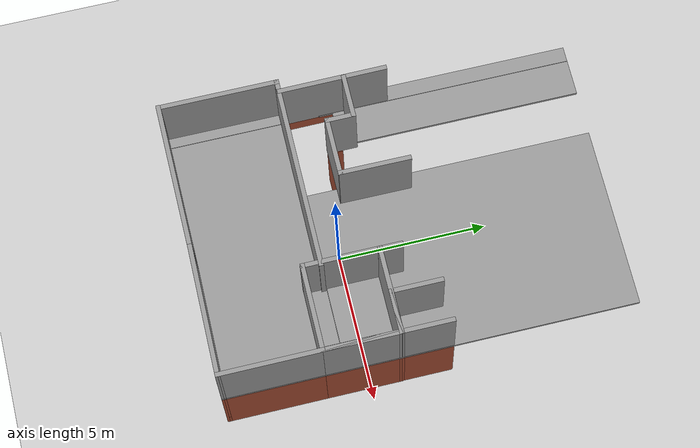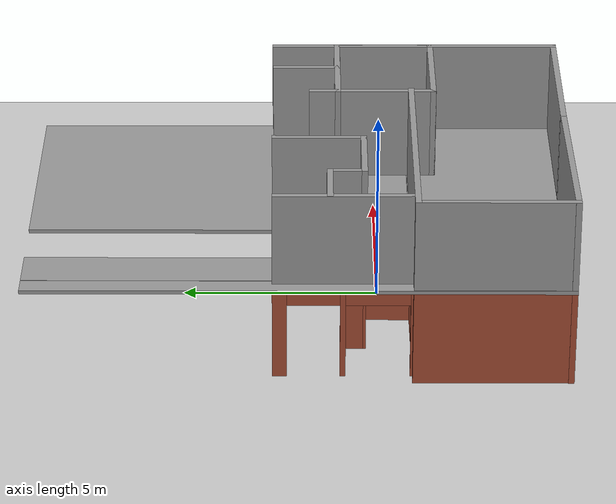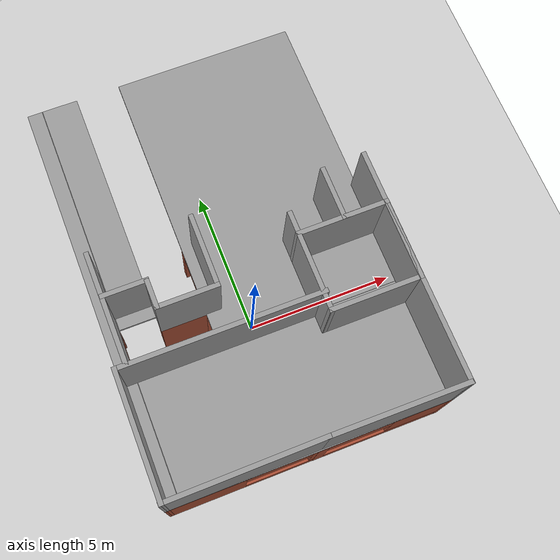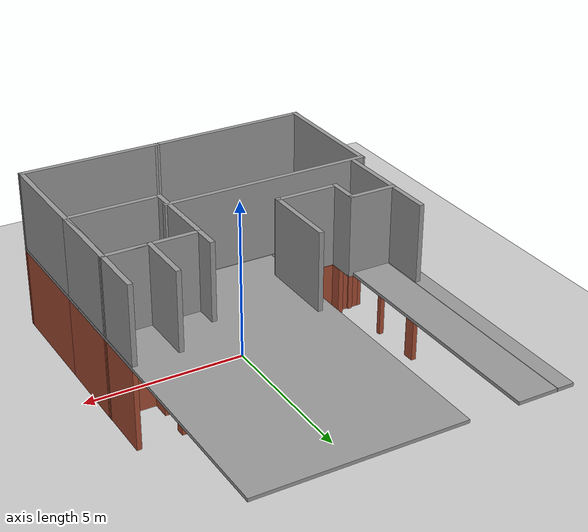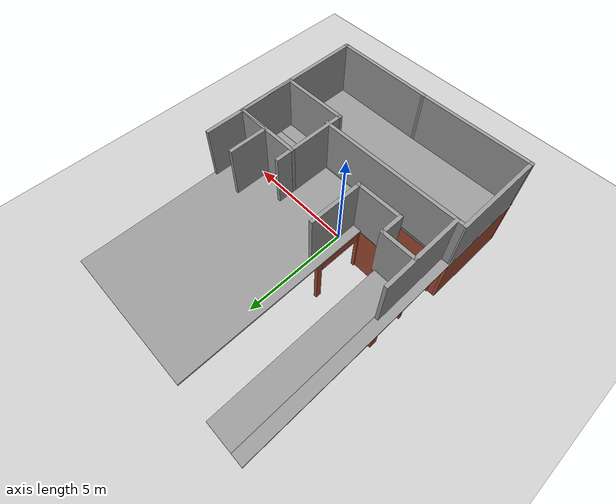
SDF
<sdf version="1.7">
 <world name="default">
  <model name="ground_plane">
   <static>1</static>
   <link name="link">
    <collision name="collision">
     <geometry><plane><normal>0 0 1</normal><size>100 100</size></plane></geometry>
     <surface><friction><ode><mu>100</mu><mu2>50</mu2></ode></friction></surface>
    </collision>
    <visual name="visual">
     <cast_shadows>0</cast_shadows>
     <geometry><plane><normal>0 0 1</normal><size>100 100</size></plane></geometry>
     <material>
      <script><uri>file://media/materials/scripts/gazebo.material</uri><name>Gazebo/Grey</name></script>
     </material>
    </visual>
   </link>
  </model>
  <model name="ZuHause">
   <pose>0.001955 2.012 0 0 -0 0</pose>
   <link name="Floor_2">
    <pose>0.000206 -0.000134 2.5 0 -0 0</pose>
    <visual name="Floor_2_Visual_0">
     <pose>-4.38196 0 0.05 0 -0 0</pose>
     <geometry><box><size>0.503546 13.6275 0.1</size></box></geometry>
     <material>
      <script><uri>file://media/materials/scripts/gazebo.material</uri><name>Gazebo/Grey</name></script>
      <ambient>1 1 1 1</ambient>
     </material>
     <meta><layer>1</layer></meta>
    </visual>
    <collision name="Floor_2_Collision_0">
     <geometry><box><size>0.503546 13.6275 0.1</size></box></geometry>
     <pose>-4.38196 0 0.05 0 -0 0</pose>
    </collision>
    <visual name="Floor_2_Visual_1">
     <pose>-4.12306 -4.79997 0.05 0 -0 0</pose>
     <geometry><box><size>0.014263 4.02759 0.1</size></box></geometry>
     <material>
      <script><uri>file://media/materials/scripts/gazebo.material</uri><name>Gazebo/Grey</name></script>
      <ambient>1 1 1 1</ambient>
     </material>
     <meta><layer>1</layer></meta>
    </visual>
    <collision name="Floor_2_Collision_1">
     <geometry><box><size>0.014263 4.02759 0.1</size></box></geometry>
     <pose>-4.12306 -4.79997 0.05 0 -0 0</pose>
    </collision>
    <visual name="Floor_2_Visual_2">
     <pose>0.258905 -4.80487 0.05 0 -0 0</pose>
     <geometry><box><size>8.74967 4.01778 0.1</size></box></geometry>
     <material>
      <script><uri>file://media/materials/scripts/gazebo.material</uri><name>Gazebo/Grey</name></script>
      <ambient>1 1 1 1</ambient>
     </material>
     <meta><layer>1</layer></meta>
    </visual>
    <collision name="Floor_2_Collision_2">
     <geometry><box><size>8.74967 4.01778 0.1</size></box></geometry>
     <pose>0.258905 -4.80487 0.05 0 -0 0</pose>
    </collision>
    <visual name="Floor_2_Visual_3">
     <pose>0.858905 -2.79108 0.05 0 -0 0</pose>
     <geometry><box><size>7.54967 0.009809 0.1</size></box></geometry>
     <material>
      <script><uri>file://media/materials/scripts/gazebo.material</uri><name>Gazebo/Grey</name></script>
      <ambient>1 1 1 1</ambient>
     </material>
     <meta><layer>1</layer></meta>
    </visual>
    <collision name="Floor_2_Collision_3">
     <geometry><box><size>7.54967 0.009809 0.1</size></box></geometry>
     <pose>0.858905 -2.79108 0.05 0 -0 0</pose>
    </collision>
    <visual name="Floor_2_Visual_4">
     <pose>1.5995 2.01379 0.05 0 -0 0</pose>
     <geometry><box><size>6.06847 9.59994 0.1</size></box></geometry>
     <material>
      <script><uri>file://media/materials/scripts/gazebo.material</uri><name>Gazebo/Grey</name></script>
      <ambient>1 1 1 1</ambient>
     </material>
     <meta><layer>1</layer></meta>
    </visual>
    <collision name="Floor_2_Collision_4">
     <geometry><box><size>6.06847 9.59994 0.1</size></box></geometry>
     <pose>1.5995 2.01379 0.05 0 -0 0</pose>
    </collision>
    <visual name="Floor_2_Visual_5">
     <pose>-4.12306 2.56379 0.05 0 -0 0</pose>
     <geometry><box><size>0.014263 8.49994 0.1</size></box></geometry>
     <material>
      <script><uri>file://media/materials/scripts/gazebo.material</uri><name>Gazebo/Grey</name></script>
      <ambient>1 1 1 1</ambient>
     </material>
     <meta><layer>1</layer></meta>
    </visual>
    <collision name="Floor_2_Collision_5">
     <geometry><box><size>0.014263 8.49994 0.1</size></box></geometry>
     <pose>-4.12306 2.56379 0.05 0 -0 0</pose>
    </collision>
    <visual name="Floor_2_Visual_6">
     <pose>-3.51593 2.79256 0.05 0 -0 0</pose>
     <geometry><box><size>1.2 8.0424 0.1</size></box></geometry>
     <material>
      <script><uri>file://media/materials/scripts/gazebo.material</uri><name>Gazebo/Grey</name></script>
      <ambient>1 1 1 1</ambient>
     </material>
     <meta><layer>1</layer></meta>
    </visual>
    <collision name="Floor_2_Collision_6">
     <geometry><box><size>1.2 8.0424 0.1</size></box></geometry>
     <pose>-3.51593 2.79256 0.05 0 -0 0</pose>
    </collision>
   </link>
   <link name="Wall_110">
    <collision name="Wall_110_Collision">
     <geometry><box><size>3.59527 0.15 2.5</size></box></geometry>
     <pose>0 0 1.25 0 -0 0</pose>
    </collision>
    <visual name="Wall_110_Visual">
     <pose>0 0 1.25 0 -0 0</pose>
     <geometry><box><size>3.59527 0.15 2.5</size></box></geometry>
     <material>
      <script><uri>file://media/materials/scripts/gazebo.material</uri><name>Gazebo/Grey</name></script>
      <ambient>1 1 1 1</ambient>
     </material>
     <meta><layer>1</layer></meta>
    </visual>
    <pose>-4.20835 -1.14672 2.5 0 -0 -1.56465</pose>
   </link>
   <link name="Wall_112">
    <collision name="Wall_112_Collision">
     <geometry><box><size>2.36905 0.15 2.5</size></box></geometry>
     <pose>0 0 1.25 0 -0 0</pose>
    </collision>
    <visual name="Wall_112_Visual">
     <pose>0 0 1.25 0 -0 0</pose>
     <geometry><box><size>2.36905 0.15 2.5</size></box></geometry>
     <material>
      <script><uri>file://media/materials/scripts/gazebo.material</uri><name>Gazebo/Grey</name></script>
      <ambient>1 1 1 1</ambient>
     </material>
     <meta><layer>1</layer></meta>
    </visual>
    <pose>-0.99461 -0.507996 2.5 0 -0 -1.57446</pose>
   </link>
   <link name="Wall_113">
    <collision name="Wall_113_Collision">
     <geometry><box><size>1 0.15 2.5</size></box></geometry>
     <pose>0 0 1.25 0 -0 0</pose>
    </collision>
    <visual name="Wall_113_Visual">
     <pose>0 0 1.25 0 -0 0</pose>
     <geometry><box><size>1 0.15 2.5</size></box></geometry>
     <material>
      <script><uri>file://media/materials/scripts/gazebo.material</uri><name>Gazebo/Grey</name></script>
      <ambient>1 1 1 1</ambient>
     </material>
     <meta><layer>1</layer></meta>
    </visual>
    <pose>-2.8489 -1.19254 2.5 0 -0 -1.5708</pose>
   </link>
   <link name="Wall_114">
    <collision name="Wall_114_Collision">
     <geometry><box><size>2 0.15 2.5</size></box></geometry>
     <pose>0 0 1.25 0 -0 0</pose>
    </collision>
    <visual name="Wall_114_Visual">
     <pose>0 0 1.25 0 -0 0</pose>
     <geometry><box><size>2 0.15 2.5</size></box></geometry>
     <material>
      <script><uri>file://media/materials/scripts/gazebo.material</uri><name>Gazebo/Grey</name></script>
      <ambient>1 1 1 1</ambient>
     </material>
     <meta><layer>1</layer></meta>
    </visual>
    <pose>-1.9239 -1.62325 2.5 0 -0 0</pose>
   </link>
   <link name="Wall_116">
    <collision name="Wall_116_Collision">
     <geometry><box><size>6.5 0.15 2.5</size></box></geometry>
     <pose>0 0 1.25 0 -0 0</pose>
    </collision>
    <visual name="Wall_116_Visual">
     <pose>0 0 1.25 0 -0 0</pose>
     <geometry><box><size>6.5 0.15 2.5</size></box></geometry>
     <material>
      <script><uri>file://media/materials/scripts/gazebo.material</uri><name>Gazebo/Grey</name></script>
      <ambient>1 1 1 1</ambient>
     </material>
     <meta><layer>1</layer></meta>
    </visual>
    <pose>-1.35316 -2.88854 2.5 0 -0 3.14159</pose>
   </link>
   <link name="Wall_117">
    <collision name="Wall_117_Collision">
     <geometry><box><size>4 0.15 2.5</size></box></geometry>
     <pose>0 0 1.25 0 -0 0</pose>
    </collision>
    <visual name="Wall_117_Visual">
     <pose>0 0 1.25 0 -0 0</pose>
     <geometry><box><size>4 0.15 2.5</size></box></geometry>
     <material>
      <script><uri>file://media/materials/scripts/gazebo.material</uri><name>Gazebo/Grey</name></script>
      <ambient>1 1 1 1</ambient>
     </material>
     <meta><layer>1</layer></meta>
    </visual>
    <pose>-4.53674 -4.81354 2.5 0 -0 -1.57158</pose>
   </link>
   <link name="Wall_118">
    <collision name="Wall_118_Collision">
     <geometry><box><size>5.00002 0.15 2.5</size></box></geometry>
     <pose>0 0 1.25 0 -0 0</pose>
    </collision>
    <visual name="Wall_118_Visual">
     <pose>0 0 1.25 0 -0 0</pose>
     <geometry><box><size>5.00002 0.15 2.5</size></box></geometry>
     <material>
      <script><uri>file://media/materials/scripts/gazebo.material</uri><name>Gazebo/Grey</name></script>
      <ambient>1 1 1 1</ambient>
     </material>
     <meta><layer>1</layer></meta>
    </visual>
    <pose>-2.12032 -6.72278 2.5 0 -0 0.006499</pose>
   </link>
   <link name="Wall_120">
    <collision name="Wall_120_Collision">
     <geometry><box><size>4.40395 0.15 2.5</size></box></geometry>
     <pose>0 0 1.25 0 -0 0</pose>
    </collision>
    <visual name="Wall_120_Visual">
     <pose>0 0 1.25 0 -0 0</pose>
     <geometry><box><size>4.40395 0.15 2.5</size></box></geometry>
     <material>
      <script><uri>file://media/materials/scripts/gazebo.material</uri><name>Gazebo/Grey</name></script>
      <ambient>1 1 1 1</ambient>
     </material>
     <meta><layer>1</layer></meta>
    </visual>
    <pose>2.43165 -6.7211 2.5 0 -0 -0.006621</pose>
   </link>
   <link name="Wall_122">
    <collision name="Wall_122_Collision">
     <geometry><box><size>3.42352 0.15 2.5</size></box></geometry>
     <pose>0 0 1.25 0 -0 0</pose>
    </collision>
    <visual name="Wall_122_Visual">
     <pose>0 0 1.25 0 -0 0</pose>
     <geometry><box><size>3.42352 0.15 2.5</size></box></geometry>
     <material>
      <script><uri>file://media/materials/scripts/gazebo.material</uri><name>Gazebo/Grey</name></script>
      <ambient>1 1 1 1</ambient>
     </material>
     <meta><layer>1</layer></meta>
    </visual>
    <pose>4.55523 -5.09843 2.5 0 -0 1.57287</pose>
   </link>
   <link name="Wall_123">
    <collision name="Wall_123_Collision">
     <geometry><box><size>2.94648 0.15 2.5</size></box></geometry>
     <pose>0 0 1.25 0 -0 0</pose>
    </collision>
    <visual name="Wall_123_Visual">
     <pose>0 0 1.25 0 -0 0</pose>
     <geometry><box><size>2.94648 0.15 2.5</size></box></geometry>
     <material>
      <script><uri>file://media/materials/scripts/gazebo.material</uri><name>Gazebo/Grey</name></script>
      <ambient>1 1 1 1</ambient>
     </material>
     <meta><layer>1</layer></meta>
    </visual>
    <pose>3.1536 -3.46176 2.5 0 -0 -3.14153</pose>
   </link>
   <link name="Wall_124">
    <collision name="Wall_124_Collision">
     <geometry><box><size>2.5 0.15 2.5</size></box></geometry>
     <pose>0 0 1.25 0 -0 0</pose>
    </collision>
    <visual name="Wall_124_Visual">
     <pose>0 0 1.25 0 -0 0</pose>
     <geometry><box><size>2.5 0.15 2.5</size></box></geometry>
     <material>
      <script><uri>file://media/materials/scripts/gazebo.material</uri><name>Gazebo/Grey</name></script>
      <ambient>1 1 1 1</ambient>
     </material>
     <meta><layer>1</layer></meta>
    </visual>
    <pose>1.75536 -2.28685 2.5 0 -0 1.5708</pose>
   </link>
   <link name="Wall_125">
    <collision name="Wall_125_Collision">
     <geometry><box><size>4.25 0.15 2.5</size></box></geometry>
     <pose>0 0 1.25 0 -0 0</pose>
    </collision>
    <visual name="Wall_125_Visual">
     <pose>0 0 1.25 0 -0 0</pose>
     <geometry><box><size>4.25 0.15 2.5</size></box></geometry>
     <material>
      <script><uri>file://media/materials/scripts/gazebo.material</uri><name>Gazebo/Grey</name></script>
      <ambient>1 1 1 1</ambient>
     </material>
     <meta><layer>1</layer></meta>
    </visual>
    <pose>4.54523 -1.41168 2.5 0 -0 1.5708</pose>
   </link>
   <link name="Wall_126">
    <collision name="Wall_126_Collision">
     <geometry><box><size>2.62506 0.15 2.5</size></box></geometry>
     <pose>0 0 1.25 0 -0 0</pose>
    </collision>
    <visual name="Wall_126_Visual">
     <pose>0 0 1.25 0 -0 0</pose>
     <geometry><box><size>2.62506 0.15 2.5</size></box></geometry>
     <material>
      <script><uri>file://media/materials/scripts/gazebo.material</uri><name>Gazebo/Grey</name></script>
      <ambient>1 1 1 1</ambient>
     </material>
     <meta><layer>1</layer></meta>
    </visual>
    <pose>4.55309 -2.22415 2.5 0 -0 1.56979</pose>
   </link>
   <link name="Wall_127">
    <collision name="Wall_127_Collision">
     <geometry><box><size>2.94945 0.15 2.5</size></box></geometry>
     <pose>0 0 1.25 0 -0 0</pose>
    </collision>
    <visual name="Wall_127_Visual">
     <pose>0 0 1.25 0 -0 0</pose>
     <geometry><box><size>2.94945 0.15 2.5</size></box></geometry>
     <material>
      <script><uri>file://media/materials/scripts/gazebo.material</uri><name>Gazebo/Grey</name></script>
      <ambient>1 1 1 1</ambient>
     </material>
     <meta><layer>1</layer></meta>
    </visual>
    <pose>3.15462 -0.994831 2.5 0 -0 -3.13844</pose>
   </link>
   <link name="Wall_128">
    <collision name="Wall_128_Collision">
     <geometry><box><size>1.5 0.15 2.5</size></box></geometry>
     <pose>0 0 1.25 0 -0 0</pose>
    </collision>
    <visual name="Wall_128_Visual">
     <pose>0 0 1.25 0 -0 0</pose>
     <geometry><box><size>1.5 0.15 2.5</size></box></geometry>
     <material>
      <script><uri>file://media/materials/scripts/gazebo.material</uri><name>Gazebo/Grey</name></script>
      <ambient>1 1 1 1</ambient>
     </material>
     <meta><layer>1</layer></meta>
    </visual>
    <pose>3.87934 -0.990423 2.5 0 -0 3.14159</pose>
   </link>
   <link name="Wall_129">
    <collision name="Wall_129_Collision">
     <geometry><box><size>1.75 0.15 2.5</size></box></geometry>
     <pose>0 0 1.25 0 -0 0</pose>
    </collision>
    <visual name="Wall_129_Visual">
     <pose>0 0 1.25 0 -0 0</pose>
     <geometry><box><size>1.75 0.15 2.5</size></box></geometry>
     <material>
      <script><uri>file://media/materials/scripts/gazebo.material</uri><name>Gazebo/Grey</name></script>
      <ambient>1 1 1 1</ambient>
     </material>
     <meta><layer>1</layer></meta>
    </visual>
    <pose>3.20433 -0.190423 2.5 0 -0 1.5708</pose>
   </link>
   <link name="Wall_130">
    <collision name="Wall_130_Collision">
     <geometry><box><size>0.814945 0.15 2.5</size></box></geometry>
     <pose>0 0 1.25 0 -0 0</pose>
    </collision>
    <visual name="Wall_130_Visual">
     <pose>0 0 1.25 0 -0 0</pose>
     <geometry><box><size>0.814945 0.15 2.5</size></box></geometry>
     <material>
      <script><uri>file://media/materials/scripts/gazebo.material</uri><name>Gazebo/Grey</name></script>
      <ambient>1 1 1 1</ambient>
     </material>
     <meta><layer>1</layer></meta>
    </visual>
    <pose>1.75865 -0.666766 2.5 0 -0 1.57258</pose>
   </link>
   <link name="Wall_140">
    <collision name="Wall_140_Collision">
     <geometry><box><size>1.5 0.15 2.5</size></box></geometry>
     <pose>0 0 1.25 0 -0 0</pose>
    </collision>
    <visual name="Wall_140_Visual">
     <pose>0 0 1.25 0 -0 0</pose>
     <geometry><box><size>1.5 0.15 2.5</size></box></geometry>
     <material>
      <script><uri>file://media/materials/scripts/gazebo.material</uri><name>Gazebo/Grey</name></script>
      <ambient>1 1 1 1</ambient>
     </material>
     <meta><layer>1</layer></meta>
    </visual>
    <pose>-3.5239 -0.767536 2.5 0 -0 3.14159</pose>
   </link>
   <link name="Wall_16">
    <pose>-1.34308 -1.1352 0 0 -0 -1.57348</pose>
    <visual name="Wall_16_Visual_0">
     <pose>-1.70399 0 1.25 0 -0 0</pose>
     <geometry><box><size>0.225416 0.15 2.5</size></box></geometry>
     <material>
      <script><uri>file://media/materials/scripts/gazebo.material</uri><name>Gazebo/Bricks</name></script>
      <ambient>1 1 1 1</ambient>
     </material>
     <meta><layer>0</layer></meta>
    </visual>
    <collision name="Wall_16_Collision_0">
     <geometry><box><size>0.225416 0.15 2.5</size></box></geometry>
     <pose>-1.70399 0 1.25 0 -0 0</pose>
    </collision>
    <visual name="Wall_16_Visual_1">
     <pose>1.07237 0 1.25 0 -0 0</pose>
     <geometry><box><size>1.48864 0.15 2.5</size></box></geometry>
     <material>
      <script><uri>file://media/materials/scripts/gazebo.material</uri><name>Gazebo/Bricks</name></script>
      <ambient>1 1 1 1</ambient>
     </material>
     <meta><layer>0</layer></meta>
    </visual>
    <collision name="Wall_16_Collision_1">
     <geometry><box><size>1.48864 0.15 2.5</size></box></geometry>
     <pose>1.07237 0 1.25 0 -0 0</pose>
    </collision>
    <visual name="Wall_16_Visual_2">
     <pose>-0.631614 0 2.25 0 -0 0</pose>
     <geometry><box><size>1.91933 0.15 0.5</size></box></geometry>
     <material>
      <script><uri>file://media/materials/scripts/gazebo.material</uri><name>Gazebo/Bricks</name></script>
      <ambient>1 1 1 1</ambient>
     </material>
     <meta><layer>0</layer></meta>
    </visual>
    <collision name="Wall_16_Collision_2">
     <geometry><box><size>1.91933 0.15 0.5</size></box></geometry>
     <pose>-0.631614 0 2.25 0 -0 0</pose>
    </collision>
   </link>
   <link name="Wall_19">
    <collision name="Wall_19_Collision">
     <geometry><box><size>0.5 0.15 2.5</size></box></geometry>
     <pose>0 0 1.25 0 -0 0</pose>
    </collision>
    <visual name="Wall_19_Visual">
     <pose>0 0 1.25 0 -0 0</pose>
     <geometry><box><size>0.5 0.15 2.5</size></box></geometry>
     <material>
      <script><uri>file://media/materials/scripts/gazebo.material</uri><name>Gazebo/Bricks</name></script>
      <ambient>1 1 1 1</ambient>
     </material>
     <meta><layer>0</layer></meta>
    </visual>
    <pose>-2.83175 -1.43111 0 0 -0 -1.5708</pose>
   </link>
   <link name="Wall_20">
    <collision name="Wall_20_Collision">
     <geometry><box><size>1.49201 0.15 2.5</size></box></geometry>
     <pose>0 0 1.25 0 -0 0</pose>
    </collision>
    <visual name="Wall_20_Visual">
     <pose>0 0 1.25 0 -0 0</pose>
     <geometry><box><size>1.49201 0.15 2.5</size></box></geometry>
     <material>
      <script><uri>file://media/materials/scripts/gazebo.material</uri><name>Gazebo/Bricks</name></script>
      <ambient>1 1 1 1</ambient>
     </material>
     <meta><layer>0</layer></meta>
    </visual>
    <pose>-2.16075 -1.60957 0 0 -0 -0.003054</pose>
   </link>
   <link name="Wall_5">
    <pose>-4.20835 -1.14672 0 0 -0 -1.56465</pose>
    <visual name="Wall_5_Visual_0">
     <pose>-1.61845 0 1.25 0 -0 0</pose>
     <geometry><box><size>0.358366 0.15 2.5</size></box></geometry>
     <material>
      <script><uri>file://media/materials/scripts/gazebo.material</uri><name>Gazebo/Bricks</name></script>
      <ambient>1 1 1 1</ambient>
     </material>
     <meta><layer>0</layer></meta>
    </visual>
    <collision name="Wall_5_Collision_0">
     <geometry><box><size>0.358366 0.15 2.5</size></box></geometry>
     <pose>-1.61845 0 1.25 0 -0 0</pose>
    </collision>
    <visual name="Wall_5_Visual_1">
     <pose>-0.056372 0 1.25 0 -0 0</pose>
     <geometry><box><size>0.138425 0.15 2.5</size></box></geometry>
     <material>
      <script><uri>file://media/materials/scripts/gazebo.material</uri><name>Gazebo/Bricks</name></script>
      <ambient>1 1 1 1</ambient>
     </material>
     <meta><layer>0</layer></meta>
    </visual>
    <collision name="Wall_5_Collision_1">
     <geometry><box><size>0.138425 0.15 2.5</size></box></geometry>
     <pose>-0.056372 0 1.25 0 -0 0</pose>
    </collision>
    <visual name="Wall_5_Visual_2">
     <pose>1.70524 0 1.25 0 -0 0</pose>
     <geometry><box><size>0.184797 0.15 2.5</size></box></geometry>
     <material>
      <script><uri>file://media/materials/scripts/gazebo.material</uri><name>Gazebo/Bricks</name></script>
      <ambient>1 1 1 1</ambient>
     </material>
     <meta><layer>0</layer></meta>
    </visual>
    <collision name="Wall_5_Collision_2">
     <geometry><box><size>0.184797 0.15 2.5</size></box></geometry>
     <pose>1.70524 0 1.25 0 -0 0</pose>
    </collision>
    <visual name="Wall_5_Visual_3">
     <pose>-0.782428 0 2.25 0 -0 0</pose>
     <geometry><box><size>1.31368 0.15 0.5</size></box></geometry>
     <material>
      <script><uri>file://media/materials/scripts/gazebo.material</uri><name>Gazebo/Bricks</name></script>
      <ambient>1 1 1 1</ambient>
     </material>
     <meta><layer>0</layer></meta>
    </visual>
    <collision name="Wall_5_Collision_3">
     <geometry><box><size>1.31368 0.15 0.5</size></box></geometry>
     <pose>-0.782428 0 2.25 0 -0 0</pose>
    </collision>
    <visual name="Wall_5_Visual_4">
     <pose>0.81284 0 2.25 0 -0 0</pose>
     <geometry><box><size>1.6 0.15 0.5</size></box></geometry>
     <material>
      <script><uri>file://media/materials/scripts/gazebo.material</uri><name>Gazebo/Bricks</name></script>
      <ambient>1 1 1 1</ambient>
     </material>
     <meta><layer>0</layer></meta>
    </visual>
    <collision name="Wall_5_Collision_4">
     <geometry><box><size>1.6 0.15 0.5</size></box></geometry>
     <pose>0.81284 0 2.25 0 -0 0</pose>
    </collision>
   </link>
   <link name="Wall_67">
    <pose>-2.10316 -2.88854 0 0 -0 3.14159</pose>
    <visual name="Wall_67_Visual_0">
     <pose>-2.18013 0 1.25 0 -0 0</pose>
     <geometry><box><size>0.639734 0.15 2.5</size></box></geometry>
     <material>
      <script><uri>file://media/materials/scripts/gazebo.material</uri><name>Gazebo/Bricks</name></script>
      <ambient>1 1 1 1</ambient>
     </material>
     <meta><layer>0</layer></meta>
    </visual>
    <collision name="Wall_67_Collision_0">
     <geometry><box><size>0.639734 0.15 2.5</size></box></geometry>
     <pose>-2.18013 0 1.25 0 -0 0</pose>
    </collision>
    <visual name="Wall_67_Visual_1">
     <pose>0.769867 0 1.25 0 -0 0</pose>
     <geometry><box><size>3.46027 0.15 2.5</size></box></geometry>
     <material>
      <script><uri>file://media/materials/scripts/gazebo.material</uri><name>Gazebo/Bricks</name></script>
      <ambient>1 1 1 1</ambient>
     </material>
     <meta><layer>0</layer></meta>
    </visual>
    <collision name="Wall_67_Collision_1">
     <geometry><box><size>3.46027 0.15 2.5</size></box></geometry>
     <pose>0.769867 0 1.25 0 -0 0</pose>
    </collision>
    <visual name="Wall_67_Visual_2">
     <pose>-1.41027 0 2.25 0 -0 0</pose>
     <geometry><box><size>0.9 0.15 0.5</size></box></geometry>
     <material>
      <script><uri>file://media/materials/scripts/gazebo.material</uri><name>Gazebo/Bricks</name></script>
      <ambient>1 1 1 1</ambient>
     </material>
     <meta><layer>0</layer></meta>
    </visual>
    <collision name="Wall_67_Collision_2">
     <geometry><box><size>0.9 0.15 0.5</size></box></geometry>
     <pose>-1.41027 0 2.25 0 -0 0</pose>
    </collision>
   </link>
   <link name="Wall_70">
    <collision name="Wall_70_Collision">
     <geometry><box><size>4.00008 0.15 2.5</size></box></geometry>
     <pose>0 0 1.25 0 -0 0</pose>
    </collision>
    <visual name="Wall_70_Visual">
     <pose>0 0 1.25 0 -0 0</pose>
     <geometry><box><size>4.00008 0.15 2.5</size></box></geometry>
     <material>
      <script><uri>file://media/materials/scripts/gazebo.material</uri><name>Gazebo/Bricks</name></script>
      <ambient>1 1 1 1</ambient>
     </material>
     <meta><layer>0</layer></meta>
    </visual>
    <pose>-4.53674 -4.81354 0 0 -0 -1.57158</pose>
   </link>
   <link name="Wall_71">
    <pose>-2.12032 -6.73147 0 0 -0 0.002915</pose>
    <visual name="Wall_71_Visual_0">
     <pose>-1.22073 0 1.25 0 -0 0</pose>
     <geometry><box><size>2.55855 0.15 2.5</size></box></geometry>
     <material>
      <script><uri>file://media/materials/scripts/gazebo.material</uri><name>Gazebo/Bricks</name></script>
      <ambient>1 1 1 1</ambient>
     </material>
     <meta><layer>0</layer></meta>
    </visual>
    <collision name="Wall_71_Collision_0">
     <geometry><box><size>2.55855 0.15 2.5</size></box></geometry>
     <pose>-1.22073 0 1.25 0 -0 0</pose>
    </collision>
    <visual name="Wall_71_Visual_1">
     <pose>1.27927 0 0.25 0 -0 0</pose>
     <geometry><box><size>2.44145 0.15 0.5</size></box></geometry>
     <material>
      <script><uri>file://media/materials/scripts/gazebo.material</uri><name>Gazebo/Bricks</name></script>
      <ambient>1 1 1 1</ambient>
     </material>
     <meta><layer>0</layer></meta>
    </visual>
    <collision name="Wall_71_Collision_1">
     <geometry><box><size>2.44145 0.15 0.5</size></box></geometry>
     <pose>1.27927 0 0.25 0 -0 0</pose>
    </collision>
    <visual name="Wall_71_Visual_2">
     <pose>2.34427 0 1.5 0 -0 0</pose>
     <geometry><box><size>0.311454 0.15 2</size></box></geometry>
     <material>
      <script><uri>file://media/materials/scripts/gazebo.material</uri><name>Gazebo/Bricks</name></script>
      <ambient>1 1 1 1</ambient>
     </material>
     <meta><layer>0</layer></meta>
    </visual>
    <collision name="Wall_71_Collision_2">
     <geometry><box><size>0.311454 0.15 2</size></box></geometry>
     <pose>2.34427 0 1.5 0 -0 0</pose>
    </collision>
    <visual name="Wall_71_Visual_3">
     <pose>1.12355 0 2.1 0 -0 0</pose>
     <geometry><box><size>2.13 0.15 0.8</size></box></geometry>
     <material>
      <script><uri>file://media/materials/scripts/gazebo.material</uri><name>Gazebo/Bricks</name></script>
      <ambient>1 1 1 1</ambient>
     </material>
     <meta><layer>0</layer></meta>
    </visual>
    <collision name="Wall_71_Collision_3">
     <geometry><box><size>2.13 0.15 0.8</size></box></geometry>
     <pose>1.12355 0 2.1 0 -0 0</pose>
    </collision>
   </link>
   <link name="Wall_73">
    <collision name="Wall_73_Collision">
     <geometry><box><size>3.99479 0.15 2.5</size></box></geometry>
     <pose>0 0 1.25 0 -0 0</pose>
    </collision>
    <visual name="Wall_73_Visual">
     <pose>0 0 1.25 0 -0 0</pose>
     <geometry><box><size>3.99479 0.15 2.5</size></box></geometry>
     <material>
      <script><uri>file://media/materials/scripts/gazebo.material</uri><name>Gazebo/Bricks</name></script>
      <ambient>1 1 1 1</ambient>
     </material>
     <meta><layer>0</layer></meta>
    </visual>
    <pose>0.301914 -4.80201 0 0 -0 1.57223</pose>
   </link>
   <link name="Wall_75">
    <pose>2.43165 -6.73333 0 0 -0 -0.000873</pose>
    <visual name="Wall_75_Visual_0">
     <pose>-2.03053 0 1.25 0 -0 0</pose>
     <geometry><box><size>0.342885 0.15 2.5</size></box></geometry>
     <material>
      <script><uri>file://media/materials/scripts/gazebo.material</uri><name>Gazebo/Bricks</name></script>
      <ambient>1 1 1 1</ambient>
     </material>
     <meta><layer>0</layer></meta>
    </visual>
    <collision name="Wall_75_Collision_0">
     <geometry><box><size>0.342885 0.15 2.5</size></box></geometry>
     <pose>-2.03053 0 1.25 0 -0 0</pose>
    </collision>
    <visual name="Wall_75_Visual_1">
     <pose>0.171442 0 0.25 0 -0 0</pose>
     <geometry><box><size>4.06106 0.15 0.5</size></box></geometry>
     <material>
      <script><uri>file://media/materials/scripts/gazebo.material</uri><name>Gazebo/Bricks</name></script>
      <ambient>1 1 1 1</ambient>
     </material>
     <meta><layer>0</layer></meta>
    </visual>
    <collision name="Wall_75_Collision_1">
     <geometry><box><size>4.06106 0.15 0.5</size></box></geometry>
     <pose>0.171442 0 0.25 0 -0 0</pose>
    </collision>
    <visual name="Wall_75_Visual_2">
     <pose>1.23144 0 1.5 0 -0 0</pose>
     <geometry><box><size>1.94106 0.15 2</size></box></geometry>
     <material>
      <script><uri>file://media/materials/scripts/gazebo.material</uri><name>Gazebo/Bricks</name></script>
      <ambient>1 1 1 1</ambient>
     </material>
     <meta><layer>0</layer></meta>
    </visual>
    <collision name="Wall_75_Collision_2">
     <geometry><box><size>1.94106 0.15 2</size></box></geometry>
     <pose>1.23144 0 1.5 0 -0 0</pose>
    </collision>
    <visual name="Wall_75_Visual_3">
     <pose>-0.799088 0 2.1 0 -0 0</pose>
     <geometry><box><size>2.12 0.15 0.8</size></box></geometry>
     <material>
      <script><uri>file://media/materials/scripts/gazebo.material</uri><name>Gazebo/Bricks</name></script>
      <ambient>1 1 1 1</ambient>
     </material>
     <meta><layer>0</layer></meta>
    </visual>
    <collision name="Wall_75_Collision_3">
     <geometry><box><size>2.12 0.15 0.8</size></box></geometry>
     <pose>-0.799088 0 2.1 0 -0 0</pose>
    </collision>
   </link>
   <link name="Wall_78">
    <pose>0.967084 -2.87962 0 0 -0 0</pose>
    <visual name="Wall_78_Visual_0">
     <pose>-0.552229 0 1.25 0 -0 0</pose>
     <geometry><box><size>0.395543 0.15 2.5</size></box></geometry>
     <material>
      <script><uri>file://media/materials/scripts/gazebo.material</uri><name>Gazebo/Bricks</name></script>
      <ambient>1 1 1 1</ambient>
     </material>
     <meta><layer>0</layer></meta>
    </visual>
    <collision name="Wall_78_Collision_0">
     <geometry><box><size>0.395543 0.15 2.5</size></box></geometry>
     <pose>-0.552229 0 1.25 0 -0 0</pose>
    </collision>
    <visual name="Wall_78_Visual_1">
     <pose>0.597771 0 1.25 0 -0 0</pose>
     <geometry><box><size>0.304457 0.15 2.5</size></box></geometry>
     <material>
      <script><uri>file://media/materials/scripts/gazebo.material</uri><name>Gazebo/Bricks</name></script>
      <ambient>1 1 1 1</ambient>
     </material>
     <meta><layer>0</layer></meta>
    </visual>
    <collision name="Wall_78_Collision_1">
     <geometry><box><size>0.304457 0.15 2.5</size></box></geometry>
     <pose>0.597771 0 1.25 0 -0 0</pose>
    </collision>
    <visual name="Wall_78_Visual_2">
     <pose>0.045543 0 2.25 0 -0 0</pose>
     <geometry><box><size>0.8 0.15 0.5</size></box></geometry>
     <material>
      <script><uri>file://media/materials/scripts/gazebo.material</uri><name>Gazebo/Bricks</name></script>
      <ambient>1 1 1 1</ambient>
     </material>
     <meta><layer>0</layer></meta>
    </visual>
    <collision name="Wall_78_Collision_2">
     <geometry><box><size>0.8 0.15 0.5</size></box></geometry>
     <pose>0.045543 0 2.25 0 -0 0</pose>
    </collision>
   </link>
   <link name="Wall_80">
    <collision name="Wall_80_Collision">
     <geometry><box><size>3.42394 0.15 2.5</size></box></geometry>
     <pose>0 0 1.25 0 -0 0</pose>
    </collision>
    <visual name="Wall_80_Visual">
     <pose>0 0 1.25 0 -0 0</pose>
     <geometry><box><size>3.42394 0.15 2.5</size></box></geometry>
     <material>
      <script><uri>file://media/materials/scripts/gazebo.material</uri><name>Gazebo/Bricks</name></script>
      <ambient>1 1 1 1</ambient>
     </material>
     <meta><layer>0</layer></meta>
    </visual>
    <pose>4.55523 -5.09843 0 0 -0 1.57287</pose>
   </link>
   <link name="Wall_81">
    <collision name="Wall_81_Collision">
     <geometry><box><size>2.94648 0.15 2.5</size></box></geometry>
     <pose>0 0 1.25 0 -0 0</pose>
    </collision>
    <visual name="Wall_81_Visual">
     <pose>0 0 1.25 0 -0 0</pose>
     <geometry><box><size>2.94648 0.15 2.5</size></box></geometry>
     <material>
      <script><uri>file://media/materials/scripts/gazebo.material</uri><name>Gazebo/Bricks</name></script>
      <ambient>1 1 1 1</ambient>
     </material>
     <meta><layer>0</layer></meta>
    </visual>
    <pose>3.1536 -3.46176 0 0 -0 -3.14153</pose>
   </link>
   <link name="Wall_83">
    <pose>1.75536 -2.28685 0 0 -0 1.5708</pose>
    <visual name="Wall_83_Visual_0">
     <pose>-0.712158 0 1.25 0 -0 0</pose>
     <geometry><box><size>1.07568 0.15 2.5</size></box></geometry>
     <material>
      <script><uri>file://media/materials/scripts/gazebo.material</uri><name>Gazebo/Bricks</name></script>
      <ambient>1 1 1 1</ambient>
     </material>
     <meta><layer>0</layer></meta>
    </visual>
    <collision name="Wall_83_Collision_0">
     <geometry><box><size>1.07568 0.15 2.5</size></box></geometry>
     <pose>-0.712158 0 1.25 0 -0 0</pose>
    </collision>
    <visual name="Wall_83_Visual_1">
     <pose>0.937842 0 1.25 0 -0 0</pose>
     <geometry><box><size>0.624316 0.15 2.5</size></box></geometry>
     <material>
      <script><uri>file://media/materials/scripts/gazebo.material</uri><name>Gazebo/Bricks</name></script>
      <ambient>1 1 1 1</ambient>
     </material>
     <meta><layer>0</layer></meta>
    </visual>
    <collision name="Wall_83_Collision_1">
     <geometry><box><size>0.624316 0.15 2.5</size></box></geometry>
     <pose>0.937842 0 1.25 0 -0 0</pose>
    </collision>
    <visual name="Wall_83_Visual_2">
     <pose>0.225684 0 2.25 0 -0 0</pose>
     <geometry><box><size>0.8 0.15 0.5</size></box></geometry>
     <material>
      <script><uri>file://media/materials/scripts/gazebo.material</uri><name>Gazebo/Bricks</name></script>
      <ambient>1 1 1 1</ambient>
     </material>
     <meta><layer>0</layer></meta>
    </visual>
    <collision name="Wall_83_Collision_2">
     <geometry><box><size>0.8 0.15 0.5</size></box></geometry>
     <pose>0.225684 0 2.25 0 -0 0</pose>
    </collision>
   </link>
   <link name="Wall_85">
    <collision name="Wall_85_Collision">
     <geometry><box><size>4.25 0.15 2.5</size></box></geometry>
     <pose>0 0 1.25 0 -0 0</pose>
    </collision>
    <visual name="Wall_85_Visual">
     <pose>0 0 1.25 0 -0 0</pose>
     <geometry><box><size>4.25 0.15 2.5</size></box></geometry>
     <material>
      <script><uri>file://media/materials/scripts/gazebo.material</uri><name>Gazebo/Bricks</name></script>
      <ambient>1 1 1 1</ambient>
     </material>
     <meta><layer>0</layer></meta>
    </visual>
    <pose>4.54523 -1.41168 0 0 -0 1.5708</pose>
   </link>
   <link name="Wall_87">
    <collision name="Wall_87_Collision">
     <geometry><box><size>2.62553 0.15 2.5</size></box></geometry>
     <pose>0 0 1.25 0 -0 0</pose>
    </collision>
    <visual name="Wall_87_Visual">
     <pose>0 0 1.25 0 -0 0</pose>
     <geometry><box><size>2.62553 0.15 2.5</size></box></geometry>
     <material>
      <script><uri>file://media/materials/scripts/gazebo.material</uri><name>Gazebo/Bricks</name></script>
      <ambient>1 1 1 1</ambient>
     </material>
     <meta><layer>0</layer></meta>
    </visual>
    <pose>4.55309 -2.22415 0 0 -0 1.56979</pose>
   </link>
   <link name="Wall_88">
    <collision name="Wall_88_Collision">
     <geometry><box><size>2.94945 0.15 2.5</size></box></geometry>
     <pose>0 0 1.25 0 -0 0</pose>
    </collision>
    <visual name="Wall_88_Visual">
     <pose>0 0 1.25 0 -0 0</pose>
     <geometry><box><size>2.94945 0.15 2.5</size></box></geometry>
     <material>
      <script><uri>file://media/materials/scripts/gazebo.material</uri><name>Gazebo/Bricks</name></script>
      <ambient>1 1 1 1</ambient>
     </material>
     <meta><layer>0</layer></meta>
    </visual>
    <pose>3.15462 -0.994831 0 0 -0 -3.13844</pose>
   </link>
   <link name="Wall_91">
    <collision name="Wall_91_Collision">
     <geometry><box><size>1.5 0.15 2.5</size></box></geometry>
     <pose>0 0 1.25 0 -0 0</pose>
    </collision>
    <visual name="Wall_91_Visual">
     <pose>0 0 1.25 0 -0 0</pose>
     <geometry><box><size>1.5 0.15 2.5</size></box></geometry>
     <material>
      <script><uri>file://media/materials/scripts/gazebo.material</uri><name>Gazebo/Bricks</name></script>
      <ambient>1 1 1 1</ambient>
     </material>
     <meta><layer>0</layer></meta>
    </visual>
    <pose>3.87934 -0.990423 0 0 -0 3.14159</pose>
   </link>
   <link name="Wall_92">
    <pose>3.20433 -0.190423 0 0 -0 1.5708</pose>
    <visual name="Wall_92_Visual_0">
     <pose>-0.521256 0 1.25 0 -0 0</pose>
     <geometry><box><size>0.707488 0.15 2.5</size></box></geometry>
     <material>
      <script><uri>file://media/materials/scripts/gazebo.material</uri><name>Gazebo/Bricks</name></script>
      <ambient>1 1 1 1</ambient>
     </material>
     <meta><layer>0</layer></meta>
    </visual>
    <collision name="Wall_92_Collision_0">
     <geometry><box><size>0.707488 0.15 2.5</size></box></geometry>
     <pose>-0.521256 0 1.25 0 -0 0</pose>
    </collision>
    <visual name="Wall_92_Visual_1">
     <pose>0.733744 0 1.25 0 -0 0</pose>
     <geometry><box><size>0.282512 0.15 2.5</size></box></geometry>
     <material>
      <script><uri>file://media/materials/scripts/gazebo.material</uri><name>Gazebo/Bricks</name></script>
      <ambient>1 1 1 1</ambient>
     </material>
     <meta><layer>0</layer></meta>
    </visual>
    <collision name="Wall_92_Collision_1">
     <geometry><box><size>0.282512 0.15 2.5</size></box></geometry>
     <pose>0.733744 0 1.25 0 -0 0</pose>
    </collision>
    <visual name="Wall_92_Visual_2">
     <pose>0.212488 0 2.25 0 -0 0</pose>
     <geometry><box><size>0.76 0.15 0.5</size></box></geometry>
     <material>
      <script><uri>file://media/materials/scripts/gazebo.material</uri><name>Gazebo/Bricks</name></script>
      <ambient>1 1 1 1</ambient>
     </material>
     <meta><layer>0</layer></meta>
    </visual>
    <collision name="Wall_92_Collision_2">
     <geometry><box><size>0.76 0.15 0.5</size></box></geometry>
     <pose>0.212488 0 2.25 0 -0 0</pose>
    </collision>
   </link>
   <link name="Wall_94">
    <collision name="Wall_94_Collision">
     <geometry><box><size>0.814945 0.15 2.5</size></box></geometry>
     <pose>0 0 1.25 0 -0 0</pose>
    </collision>
    <visual name="Wall_94_Visual">
     <pose>0 0 1.25 0 -0 0</pose>
     <geometry><box><size>0.814945 0.15 2.5</size></box></geometry>
     <material>
      <script><uri>file://media/materials/scripts/gazebo.material</uri><name>Gazebo/Bricks</name></script>
      <ambient>1 1 1 1</ambient>
     </material>
     <meta><layer>0</layer></meta>
    </visual>
    <pose>1.75865 -0.666766 0 0 -0 1.57258</pose>
   </link>
   <static>1</static>
  </model>
 </world>
</sdf>
